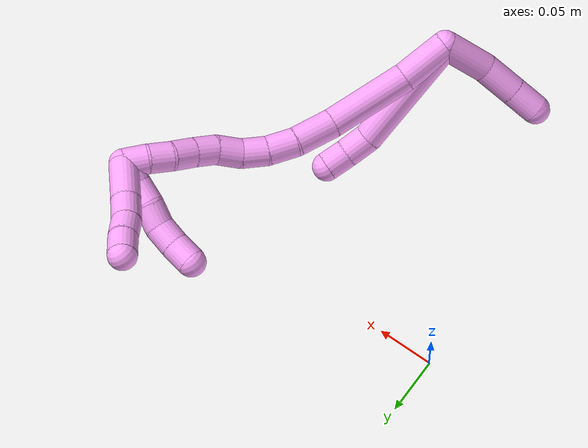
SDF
<sdf version="1.7">
 <world name="default">
  <model name="4">
   <static>0</static>
   <link name="4">
    <collision name="collision-cylinder-e_1_2_8">
     <pose>0.027486 0.04085 -0.020495 -2.0358 0.541449 -0.845293</pose>
     <geometry><cylinder><radius>0.0125</radius><length>0.106662</length></cylinder></geometry>
     <surface>
      <friction><ode><mu>1.16</mu><mu2>1.16</mu2><slip1>0</slip1><slip2>0</slip2></ode></friction>
      <contact><ode><kp>1e+06</kp><kd>1</kd><max_vel>0</max_vel><min_depth>0.001</min_depth></ode></contact>
     </surface>
    </collision>
    <visual name="visual-cylinder-e_1_2_8">
     <pose>0.027486 0.04085 -0.020495 -2.0358 0.541449 -0.845293</pose>
     <geometry><cylinder><radius>0.0125</radius><length>0.106662</length></cylinder></geometry>
     <material><ambient>1 0.65098 0.996078 1</ambient></material>
    </visual>
    <collision name="collision-cylinder-e_2_8_9">
     <pose>0.060272 0.091958 -0.041765 -1.64629 0.475798 -0.511592</pose>
     <geometry><cylinder><radius>0.0125</radius><length>0.023145</length></cylinder></geometry>
     <surface>
      <friction><ode><mu>1.16</mu><mu2>1.16</mu2><slip1>0</slip1><slip2>0</slip2></ode></friction>
      <contact><ode><kp>1e+06</kp><kd>1</kd><max_vel>0</max_vel><min_depth>0.001</min_depth></ode></contact>
     </surface>
    </collision>
    <visual name="visual-cylinder-e_2_8_9">
     <pose>0.060272 0.091958 -0.041765 -1.64629 0.475798 -0.511592</pose>
     <geometry><cylinder><radius>0.0125</radius><length>0.023145</length></cylinder></geometry>
     <material><ambient>1 0.65098 0.996078 1</ambient></material>
    </visual>
    <collision name="collision-cylinder-e_3_9_6">
     <pose>0.069321 0.111585 -0.042215 -1.53599 0.3803 -0.367585</pose>
     <geometry><cylinder><radius>0.0125</radius><length>0.020192</length></cylinder></geometry>
     <surface>
      <friction><ode><mu>1.16</mu><mu2>1.16</mu2><slip1>0</slip1><slip2>0</slip2></ode></friction>
      <contact><ode><kp>1e+06</kp><kd>1</kd><max_vel>0</max_vel><min_depth>0.001</min_depth></ode></contact>
     </surface>
    </collision>
    <visual name="visual-cylinder-e_3_9_6">
     <pose>0.069321 0.111585 -0.042215 -1.53599 0.3803 -0.367585</pose>
     <geometry><cylinder><radius>0.0125</radius><length>0.020192</length></cylinder></geometry>
     <material><ambient>1 0.65098 0.996078 1</ambient></material>
    </visual>
    <collision name="collision-cylinder-e_1_2_10">
     <pose>-0.003707 -0.007341 -0.019465 2.78095 -0.176357 -0.903084</pose>
     <geometry><cylinder><radius>0.0125</radius><length>0.042262</length></cylinder></geometry>
     <surface>
      <friction><ode><mu>1.16</mu><mu2>1.16</mu2><slip1>0</slip1><slip2>0</slip2></ode></friction>
      <contact><ode><kp>1e+06</kp><kd>1</kd><max_vel>0</max_vel><min_depth>0.001</min_depth></ode></contact>
     </surface>
    </collision>
    <visual name="visual-cylinder-e_1_2_10">
     <pose>-0.003707 -0.007341 -0.019465 2.78095 -0.176357 -0.903084</pose>
     <geometry><cylinder><radius>0.0125</radius><length>0.042262</length></cylinder></geometry>
     <material><ambient>1 0.65098 0.996078 1</ambient></material>
    </visual>
    <collision name="collision-cylinder-e_2_10_11">
     <pose>-0.012291 -0.017264 -0.053978 2.97169 -0.309154 -2.14126</pose>
     <geometry><cylinder><radius>0.0125</radius><length>0.032056</length></cylinder></geometry>
     <surface>
      <friction><ode><mu>1.16</mu><mu2>1.16</mu2><slip1>0</slip1><slip2>0</slip2></ode></friction>
      <contact><ode><kp>1e+06</kp><kd>1</kd><max_vel>0</max_vel><min_depth>0.001</min_depth></ode></contact>
     </surface>
    </collision>
    <visual name="visual-cylinder-e_2_10_11">
     <pose>-0.012291 -0.017264 -0.053978 2.97169 -0.309154 -2.14126</pose>
     <geometry><cylinder><radius>0.0125</radius><length>0.032056</length></cylinder></geometry>
     <material><ambient>1 0.65098 0.996078 1</ambient></material>
    </visual>
    <collision name="collision-cylinder-e_3_11_5">
     <pose>-0.02177 -0.02157 -0.08089 2.9972 -0.366537 -2.39752</pose>
     <geometry><cylinder><radius>0.0125</radius><length>0.025682</length></cylinder></geometry>
     <surface>
      <friction><ode><mu>1.16</mu><mu2>1.16</mu2><slip1>0</slip1><slip2>0</slip2></ode></friction>
      <contact><ode><kp>1e+06</kp><kd>1</kd><max_vel>0</max_vel><min_depth>0.001</min_depth></ode></contact>
     </surface>
    </collision>
    <visual name="visual-cylinder-e_3_11_5">
     <pose>-0.02177 -0.02157 -0.08089 2.9972 -0.366537 -2.39752</pose>
     <geometry><cylinder><radius>0.0125</radius><length>0.025682</length></cylinder></geometry>
     <material><ambient>1 0.65098 0.996078 1</ambient></material>
    </visual>
    <collision name="collision-cylinder-e_1_2_12">
     <pose>0.00926 0.01964 -0.001858 -1.66511 0.438872 -0.480762</pose>
     <geometry><cylinder><radius>0.0125</radius><length>0.043586</length></cylinder></geometry>
     <surface>
      <friction><ode><mu>1.16</mu><mu2>1.16</mu2><slip1>0</slip1><slip2>0</slip2></ode></friction>
      <contact><ode><kp>1e+06</kp><kd>1</kd><max_vel>0</max_vel><min_depth>0.001</min_depth></ode></contact>
     </surface>
    </collision>
    <visual name="visual-cylinder-e_1_2_12">
     <pose>0.00926 0.01964 -0.001858 -1.66511 0.438872 -0.480762</pose>
     <geometry><cylinder><radius>0.0125</radius><length>0.043586</length></cylinder></geometry>
     <material><ambient>1 0.65098 0.996078 1</ambient></material>
    </visual>
    <collision name="collision-cylinder-e_2_12_13">
     <pose>0.029125 0.073672 0.000371 -1.45253 0.297126 -0.26432</pose>
     <geometry><cylinder><radius>0.0125</radius><length>0.072442</length></cylinder></geometry>
     <surface>
      <friction><ode><mu>1.16</mu><mu2>1.16</mu2><slip1>0</slip1><slip2>0</slip2></ode></friction>
      <contact><ode><kp>1e+06</kp><kd>1</kd><max_vel>0</max_vel><min_depth>0.001</min_depth></ode></contact>
     </surface>
    </collision>
    <visual name="visual-cylinder-e_2_12_13">
     <pose>0.029125 0.073672 0.000371 -1.45253 0.297126 -0.26432</pose>
     <geometry><cylinder><radius>0.0125</radius><length>0.072442</length></cylinder></geometry>
     <material><ambient>1 0.65098 0.996078 1</ambient></material>
    </visual>
    <collision name="collision-cylinder-e_3_13_14">
     <pose>0.043666 0.124475 0.008702 -1.31767 0.228197 -0.176986</pose>
     <geometry><cylinder><radius>0.0125</radius><length>0.034803</length></cylinder></geometry>
     <surface>
      <friction><ode><mu>1.16</mu><mu2>1.16</mu2><slip1>0</slip1><slip2>0</slip2></ode></friction>
      <contact><ode><kp>1e+06</kp><kd>1</kd><max_vel>0</max_vel><min_depth>0.001</min_depth></ode></contact>
     </surface>
    </collision>
    <visual name="visual-cylinder-e_3_13_14">
     <pose>0.043666 0.124475 0.008702 -1.31767 0.228197 -0.176986</pose>
     <geometry><cylinder><radius>0.0125</radius><length>0.034803</length></cylinder></geometry>
     <material><ambient>1 0.65098 0.996078 1</ambient></material>
    </visual>
    <collision name="collision-cylinder-e_4_14_15">
     <pose>0.052278 0.151606 0.017215 -1.19198 0.384919 -0.262826</pose>
     <geometry><cylinder><radius>0.0125</radius><length>0.0249</length></cylinder></geometry>
     <surface>
      <friction><ode><mu>1.16</mu><mu2>1.16</mu2><slip1>0</slip1><slip2>0</slip2></ode></friction>
      <contact><ode><kp>1e+06</kp><kd>1</kd><max_vel>0</max_vel><min_depth>0.001</min_depth></ode></contact>
     </surface>
    </collision>
    <visual name="visual-cylinder-e_4_14_15">
     <pose>0.052278 0.151606 0.017215 -1.19198 0.384919 -0.262826</pose>
     <geometry><cylinder><radius>0.0125</radius><length>0.0249</length></cylinder></geometry>
     <material><ambient>1 0.65098 0.996078 1</ambient></material>
    </visual>
    <collision name="collision-cylinder-e_5_15_16">
     <pose>0.061627 0.170557 0.026997 -0.980388 0.440879 -0.238026</pose>
     <geometry><cylinder><radius>0.0125</radius><length>0.02191</length></cylinder></geometry>
     <surface>
      <friction><ode><mu>1.16</mu><mu2>1.16</mu2><slip1>0</slip1><slip2>0</slip2></ode></friction>
      <contact><ode><kp>1e+06</kp><kd>1</kd><max_vel>0</max_vel><min_depth>0.001</min_depth></ode></contact>
     </surface>
    </collision>
    <visual name="visual-cylinder-e_5_15_16">
     <pose>0.061627 0.170557 0.026997 -0.980388 0.440879 -0.238026</pose>
     <geometry><cylinder><radius>0.0125</radius><length>0.02191</length></cylinder></geometry>
     <material><ambient>1 0.65098 0.996078 1</ambient></material>
    </visual>
    <collision name="collision-cylinder-e_6_16_17">
     <pose>0.069827 0.185463 0.040613 -0.689289 0.324015 -0.117206</pose>
     <geometry><cylinder><radius>0.0125</radius><length>0.022146</length></cylinder></geometry>
     <surface>
      <friction><ode><mu>1.16</mu><mu2>1.16</mu2><slip1>0</slip1><slip2>0</slip2></ode></friction>
      <contact><ode><kp>1e+06</kp><kd>1</kd><max_vel>0</max_vel><min_depth>0.001</min_depth></ode></contact>
     </surface>
    </collision>
    <visual name="visual-cylinder-e_6_16_17">
     <pose>0.069827 0.185463 0.040613 -0.689289 0.324015 -0.117206</pose>
     <geometry><cylinder><radius>0.0125</radius><length>0.022146</length></cylinder></geometry>
     <material><ambient>1 0.65098 0.996078 1</ambient></material>
    </visual>
    <collision name="collision-cylinder-e_7_17_18">
     <pose>0.075085 0.20016 0.054588 -0.938684 0.172503 -0.087644</pose>
     <geometry><cylinder><radius>0.0125</radius><length>0.020186</length></cylinder></geometry>
     <surface>
      <friction><ode><mu>1.16</mu><mu2>1.16</mu2><slip1>0</slip1><slip2>0</slip2></ode></friction>
      <contact><ode><kp>1e+06</kp><kd>1</kd><max_vel>0</max_vel><min_depth>0.001</min_depth></ode></contact>
     </surface>
    </collision>
    <visual name="visual-cylinder-e_7_17_18">
     <pose>0.075085 0.20016 0.054588 -0.938684 0.172503 -0.087644</pose>
     <geometry><cylinder><radius>0.0125</radius><length>0.020186</length></cylinder></geometry>
     <material><ambient>1 0.65098 0.996078 1</ambient></material>
    </visual>
    <collision name="collision-cylinder-e_8_18_19">
     <pose>0.077616 0.216368 0.066168 -0.962124 0.079894 -0.041718</pose>
     <geometry><cylinder><radius>0.0125</radius><length>0.020018</length></cylinder></geometry>
     <surface>
      <friction><ode><mu>1.16</mu><mu2>1.16</mu2><slip1>0</slip1><slip2>0</slip2></ode></friction>
      <contact><ode><kp>1e+06</kp><kd>1</kd><max_vel>0</max_vel><min_depth>0.001</min_depth></ode></contact>
     </surface>
    </collision>
    <visual name="visual-cylinder-e_8_18_19">
     <pose>0.077616 0.216368 0.066168 -0.962124 0.079894 -0.041718</pose>
     <geometry><cylinder><radius>0.0125</radius><length>0.020018</length></cylinder></geometry>
     <material><ambient>1 0.65098 0.996078 1</ambient></material>
    </visual>
    <collision name="collision-cylinder-e_9_19_20">
     <pose>0.081268 0.232375 0.077413 -0.954515 0.289245 -0.150345</pose>
     <geometry><cylinder><radius>0.0125</radius><length>0.020002</length></cylinder></geometry>
     <surface>
      <friction><ode><mu>1.16</mu><mu2>1.16</mu2><slip1>0</slip1><slip2>0</slip2></ode></friction>
      <contact><ode><kp>1e+06</kp><kd>1</kd><max_vel>0</max_vel><min_depth>0.001</min_depth></ode></contact>
     </surface>
    </collision>
    <visual name="visual-cylinder-e_9_19_20">
     <pose>0.081268 0.232375 0.077413 -0.954515 0.289245 -0.150345</pose>
     <geometry><cylinder><radius>0.0125</radius><length>0.020002</length></cylinder></geometry>
     <material><ambient>1 0.65098 0.996078 1</ambient></material>
    </visual>
    <collision name="collision-cylinder-e_10_20_1">
     <pose>0.088402 0.248185 0.087188 -1.08342 0.44229 -0.268942</pose>
     <geometry><cylinder><radius>0.0125</radius><length>0.020008</length></cylinder></geometry>
     <surface>
      <friction><ode><mu>1.16</mu><mu2>1.16</mu2><slip1>0</slip1><slip2>0</slip2></ode></friction>
      <contact><ode><kp>1e+06</kp><kd>1</kd><max_vel>0</max_vel><min_depth>0.001</min_depth></ode></contact>
     </surface>
    </collision>
    <visual name="visual-cylinder-e_10_20_1">
     <pose>0.088402 0.248185 0.087188 -1.08342 0.44229 -0.268942</pose>
     <geometry><cylinder><radius>0.0125</radius><length>0.020008</length></cylinder></geometry>
     <material><ambient>1 0.65098 0.996078 1</ambient></material>
    </visual>
    <collision name="collision-cylinder-e_1_1_21">
     <pose>0.089176 0.258489 0.082348 -2.89178 -0.35837 1.92929</pose>
     <geometry><cylinder><radius>0.0125</radius><length>0.02</length></cylinder></geometry>
     <surface>
      <friction><ode><mu>1.16</mu><mu2>1.16</mu2><slip1>0</slip1><slip2>0</slip2></ode></friction>
      <contact><ode><kp>1e+06</kp><kd>1</kd><max_vel>0</max_vel><min_depth>0.001</min_depth></ode></contact>
     </surface>
    </collision>
    <visual name="visual-cylinder-e_1_1_21">
     <pose>0.089176 0.258489 0.082348 -2.89178 -0.35837 1.92929</pose>
     <geometry><cylinder><radius>0.0125</radius><length>0.02</length></cylinder></geometry>
     <material><ambient>1 0.65098 0.996078 1</ambient></material>
    </visual>
    <collision name="collision-cylinder-e_2_21_22">
     <pose>0.079782 0.263772 0.065754 -2.76571 -0.629402 2.08406</pose>
     <geometry><cylinder><radius>0.0125</radius><length>0.02</length></cylinder></geometry>
     <surface>
      <friction><ode><mu>1.16</mu><mu2>1.16</mu2><slip1>0</slip1><slip2>0</slip2></ode></friction>
      <contact><ode><kp>1e+06</kp><kd>1</kd><max_vel>0</max_vel><min_depth>0.001</min_depth></ode></contact>
     </surface>
    </collision>
    <visual name="visual-cylinder-e_2_21_22">
     <pose>0.079782 0.263772 0.065754 -2.76571 -0.629402 2.08406</pose>
     <geometry><cylinder><radius>0.0125</radius><length>0.02</length></cylinder></geometry>
     <material><ambient>1 0.65098 0.996078 1</ambient></material>
    </visual>
    <collision name="collision-cylinder-e_3_22_23">
     <pose>0.070071 0.270279 0.0497 -2.74844 -0.392438 1.56893</pose>
     <geometry><cylinder><radius>0.0125</radius><length>0.02</length></cylinder></geometry>
     <surface>
      <friction><ode><mu>1.16</mu><mu2>1.16</mu2><slip1>0</slip1><slip2>0</slip2></ode></friction>
      <contact><ode><kp>1e+06</kp><kd>1</kd><max_vel>0</max_vel><min_depth>0.001</min_depth></ode></contact>
     </surface>
    </collision>
    <visual name="visual-cylinder-e_3_22_23">
     <pose>0.070071 0.270279 0.0497 -2.74844 -0.392438 1.56893</pose>
     <geometry><cylinder><radius>0.0125</radius><length>0.02</length></cylinder></geometry>
     <material><ambient>1 0.65098 0.996078 1</ambient></material>
    </visual>
    <collision name="collision-cylinder-e_4_23_24">
     <pose>0.059727 0.2755 0.033771 -2.91804 -0.710118 2.55367</pose>
     <geometry><cylinder><radius>0.0125</radius><length>0.02</length></cylinder></geometry>
     <surface>
      <friction><ode><mu>1.16</mu><mu2>1.16</mu2><slip1>0</slip1><slip2>0</slip2></ode></friction>
      <contact><ode><kp>1e+06</kp><kd>1</kd><max_vel>0</max_vel><min_depth>0.001</min_depth></ode></contact>
     </surface>
    </collision>
    <visual name="visual-cylinder-e_4_23_24">
     <pose>0.059727 0.2755 0.033771 -2.91804 -0.710118 2.55367</pose>
     <geometry><cylinder><radius>0.0125</radius><length>0.02</length></cylinder></geometry>
     <material><ambient>1 0.65098 0.996078 1</ambient></material>
    </visual>
    <collision name="collision-cylinder-e_5_24_4">
     <pose>0.045884 0.278374 0.019673 -2.96545 -0.821802 2.7417</pose>
     <geometry><cylinder><radius>0.0125</radius><length>0.02</length></cylinder></geometry>
     <surface>
      <friction><ode><mu>1.16</mu><mu2>1.16</mu2><slip1>0</slip1><slip2>0</slip2></ode></friction>
      <contact><ode><kp>1e+06</kp><kd>1</kd><max_vel>0</max_vel><min_depth>0.001</min_depth></ode></contact>
     </surface>
    </collision>
    <visual name="visual-cylinder-e_5_24_4">
     <pose>0.045884 0.278374 0.019673 -2.96545 -0.821802 2.7417</pose>
     <geometry><cylinder><radius>0.0125</radius><length>0.02</length></cylinder></geometry>
     <material><ambient>1 0.65098 0.996078 1</ambient></material>
    </visual>
    <collision name="collision-cylinder-e_1_1_25">
     <pose>0.081471 0.268787 0.085213 -2.02825 -0.673264 1.02453</pose>
     <geometry><cylinder><radius>0.0125</radius><length>0.035964</length></cylinder></geometry>
     <surface>
      <friction><ode><mu>1.16</mu><mu2>1.16</mu2><slip1>0</slip1><slip2>0</slip2></ode></friction>
      <contact><ode><kp>1e+06</kp><kd>1</kd><max_vel>0</max_vel><min_depth>0.001</min_depth></ode></contact>
     </surface>
    </collision>
    <visual name="visual-cylinder-e_1_1_25">
     <pose>0.081471 0.268787 0.085213 -2.02825 -0.673264 1.02453</pose>
     <geometry><cylinder><radius>0.0125</radius><length>0.035964</length></cylinder></geometry>
     <material><ambient>1 0.65098 0.996078 1</ambient></material>
    </visual>
    <collision name="collision-cylinder-e_2_25_26">
     <pose>0.061901 0.289268 0.07697 -1.82374 -0.799391 0.998775</pose>
     <geometry><cylinder><radius>0.0125</radius><length>0.023315</length></cylinder></geometry>
     <surface>
      <friction><ode><mu>1.16</mu><mu2>1.16</mu2><slip1>0</slip1><slip2>0</slip2></ode></friction>
      <contact><ode><kp>1e+06</kp><kd>1</kd><max_vel>0</max_vel><min_depth>0.001</min_depth></ode></contact>
     </surface>
    </collision>
    <visual name="visual-cylinder-e_2_25_26">
     <pose>0.061901 0.289268 0.07697 -1.82374 -0.799391 0.998775</pose>
     <geometry><cylinder><radius>0.0125</radius><length>0.023315</length></cylinder></geometry>
     <material><ambient>1 0.65098 0.996078 1</ambient></material>
    </visual>
    <collision name="collision-cylinder-e_3_26_27">
     <pose>0.046789 0.304572 0.074831 -1.58489 -0.737304 0.74683</pose>
     <geometry><cylinder><radius>0.0125</radius><length>0.020092</length></cylinder></geometry>
     <surface>
      <friction><ode><mu>1.16</mu><mu2>1.16</mu2><slip1>0</slip1><slip2>0</slip2></ode></friction>
      <contact><ode><kp>1e+06</kp><kd>1</kd><max_vel>0</max_vel><min_depth>0.001</min_depth></ode></contact>
     </surface>
    </collision>
    <visual name="visual-cylinder-e_3_26_27">
     <pose>0.046789 0.304572 0.074831 -1.58489 -0.737304 0.74683</pose>
     <geometry><cylinder><radius>0.0125</radius><length>0.020092</length></cylinder></geometry>
     <material><ambient>1 0.65098 0.996078 1</ambient></material>
    </visual>
    <collision name="collision-cylinder-e_4_27_3">
     <pose>0.032643 0.319117 0.073632 -1.72347 -0.799119 0.91481</pose>
     <geometry><cylinder><radius>0.0125</radius><length>0.020629</length></cylinder></geometry>
     <surface>
      <friction><ode><mu>1.16</mu><mu2>1.16</mu2><slip1>0</slip1><slip2>0</slip2></ode></friction>
      <contact><ode><kp>1e+06</kp><kd>1</kd><max_vel>0</max_vel><min_depth>0.001</min_depth></ode></contact>
     </surface>
    </collision>
    <visual name="visual-cylinder-e_4_27_3">
     <pose>0.032643 0.319117 0.073632 -1.72347 -0.799119 0.91481</pose>
     <geometry><cylinder><radius>0.0125</radius><length>0.020629</length></cylinder></geometry>
     <material><ambient>1 0.65098 0.996078 1</ambient></material>
    </visual>
    <collision name="collision-sphere-3">
     <pose>0.02525 0.326226 0.072538 0 -0 0</pose>
     <geometry><sphere><radius>0.0125</radius></sphere></geometry>
     <surface>
      <friction><ode><mu>1.16</mu><mu2>1.16</mu2><slip1>0</slip1><slip2>0</slip2></ode></friction>
      <contact><ode><kp>1e+06</kp><kd>1</kd><max_vel>0</max_vel><min_depth>0.001</min_depth></ode></contact>
     </surface>
    </collision>
    <visual name="visual-sphere-3">
     <pose>0.02525 0.326226 0.072538 0 -0 0</pose>
     <geometry><sphere><radius>0.0125</radius></sphere></geometry>
     <material><ambient>1 0.65098 0.996078 1</ambient></material>
    </visual>
    <collision name="collision-sphere-27">
     <pose>0.040036 0.312008 0.074726 0 -0 0</pose>
     <geometry><sphere><radius>0.0125</radius></sphere></geometry>
     <surface>
      <friction><ode><mu>1.16</mu><mu2>1.16</mu2><slip1>0</slip1><slip2>0</slip2></ode></friction>
      <contact><ode><kp>1e+06</kp><kd>1</kd><max_vel>0</max_vel><min_depth>0.001</min_depth></ode></contact>
     </surface>
    </collision>
    <visual name="visual-sphere-27">
     <pose>0.040036 0.312008 0.074726 0 -0 0</pose>
     <geometry><sphere><radius>0.0125</radius></sphere></geometry>
     <material><ambient>1 0.65098 0.996078 1</ambient></material>
    </visual>
    <collision name="collision-sphere-26">
     <pose>0.053543 0.297136 0.074936 0 -0 0</pose>
     <geometry><sphere><radius>0.0125</radius></sphere></geometry>
     <surface>
      <friction><ode><mu>1.16</mu><mu2>1.16</mu2><slip1>0</slip1><slip2>0</slip2></ode></friction>
      <contact><ode><kp>1e+06</kp><kd>1</kd><max_vel>0</max_vel><min_depth>0.001</min_depth></ode></contact>
     </surface>
    </collision>
    <visual name="visual-sphere-26">
     <pose>0.053543 0.297136 0.074936 0 -0 0</pose>
     <geometry><sphere><radius>0.0125</radius></sphere></geometry>
     <material><ambient>1 0.65098 0.996078 1</ambient></material>
    </visual>
    <collision name="collision-sphere-25">
     <pose>0.070258 0.281399 0.079003 0 -0 0</pose>
     <geometry><sphere><radius>0.0125</radius></sphere></geometry>
     <surface>
      <friction><ode><mu>1.16</mu><mu2>1.16</mu2><slip1>0</slip1><slip2>0</slip2></ode></friction>
      <contact><ode><kp>1e+06</kp><kd>1</kd><max_vel>0</max_vel><min_depth>0.001</min_depth></ode></contact>
     </surface>
    </collision>
    <visual name="visual-sphere-25">
     <pose>0.070258 0.281399 0.079003 0 -0 0</pose>
     <geometry><sphere><radius>0.0125</radius></sphere></geometry>
     <material><ambient>1 0.65098 0.996078 1</ambient></material>
    </visual>
    <collision name="collision-sphere-4">
     <pose>0.038561 0.279567 0.012969 0 -0 0</pose>
     <geometry><sphere><radius>0.0125</radius></sphere></geometry>
     <surface>
      <friction><ode><mu>1.16</mu><mu2>1.16</mu2><slip1>0</slip1><slip2>0</slip2></ode></friction>
      <contact><ode><kp>1e+06</kp><kd>1</kd><max_vel>0</max_vel><min_depth>0.001</min_depth></ode></contact>
     </surface>
    </collision>
    <visual name="visual-sphere-4">
     <pose>0.038561 0.279567 0.012969 0 -0 0</pose>
     <geometry><sphere><radius>0.0125</radius></sphere></geometry>
     <material><ambient>1 0.65098 0.996078 1</ambient></material>
    </visual>
    <collision name="collision-sphere-24">
     <pose>0.053208 0.277181 0.026377 0 -0 0</pose>
     <geometry><sphere><radius>0.0125</radius></sphere></geometry>
     <surface>
      <friction><ode><mu>1.16</mu><mu2>1.16</mu2><slip1>0</slip1><slip2>0</slip2></ode></friction>
      <contact><ode><kp>1e+06</kp><kd>1</kd><max_vel>0</max_vel><min_depth>0.001</min_depth></ode></contact>
     </surface>
    </collision>
    <visual name="visual-sphere-24">
     <pose>0.053208 0.277181 0.026377 0 -0 0</pose>
     <geometry><sphere><radius>0.0125</radius></sphere></geometry>
     <material><ambient>1 0.65098 0.996078 1</ambient></material>
    </visual>
    <collision name="collision-sphere-23">
     <pose>0.066247 0.273819 0.041165 0 -0 0</pose>
     <geometry><sphere><radius>0.0125</radius></sphere></geometry>
     <surface>
      <friction><ode><mu>1.16</mu><mu2>1.16</mu2><slip1>0</slip1><slip2>0</slip2></ode></friction>
      <contact><ode><kp>1e+06</kp><kd>1</kd><max_vel>0</max_vel><min_depth>0.001</min_depth></ode></contact>
     </surface>
    </collision>
    <visual name="visual-sphere-23">
     <pose>0.066247 0.273819 0.041165 0 -0 0</pose>
     <geometry><sphere><radius>0.0125</radius></sphere></geometry>
     <material><ambient>1 0.65098 0.996078 1</ambient></material>
    </visual>
    <collision name="collision-sphere-22">
     <pose>0.073896 0.266739 0.058235 0 -0 0</pose>
     <geometry><sphere><radius>0.0125</radius></sphere></geometry>
     <surface>
      <friction><ode><mu>1.16</mu><mu2>1.16</mu2><slip1>0</slip1><slip2>0</slip2></ode></friction>
      <contact><ode><kp>1e+06</kp><kd>1</kd><max_vel>0</max_vel><min_depth>0.001</min_depth></ode></contact>
     </surface>
    </collision>
    <visual name="visual-sphere-22">
     <pose>0.073896 0.266739 0.058235 0 -0 0</pose>
     <geometry><sphere><radius>0.0125</radius></sphere></geometry>
     <material><ambient>1 0.65098 0.996078 1</ambient></material>
    </visual>
    <collision name="collision-sphere-21">
     <pose>0.085669 0.260804 0.073274 0 -0 0</pose>
     <geometry><sphere><radius>0.0125</radius></sphere></geometry>
     <surface>
      <friction><ode><mu>1.16</mu><mu2>1.16</mu2><slip1>0</slip1><slip2>0</slip2></ode></friction>
      <contact><ode><kp>1e+06</kp><kd>1</kd><max_vel>0</max_vel><min_depth>0.001</min_depth></ode></contact>
     </surface>
    </collision>
    <visual name="visual-sphere-21">
     <pose>0.085669 0.260804 0.073274 0 -0 0</pose>
     <geometry><sphere><radius>0.0125</radius></sphere></geometry>
     <material><ambient>1 0.65098 0.996078 1</ambient></material>
    </visual>
    <collision name="collision-sphere-1">
     <pose>0.092684 0.256174 0.091422 0 -0 0</pose>
     <geometry><sphere><radius>0.0125</radius></sphere></geometry>
     <surface>
      <friction><ode><mu>1.16</mu><mu2>1.16</mu2><slip1>0</slip1><slip2>0</slip2></ode></friction>
      <contact><ode><kp>1e+06</kp><kd>1</kd><max_vel>0</max_vel><min_depth>0.001</min_depth></ode></contact>
     </surface>
    </collision>
    <visual name="visual-sphere-1">
     <pose>0.092684 0.256174 0.091422 0 -0 0</pose>
     <geometry><sphere><radius>0.0125</radius></sphere></geometry>
     <material><ambient>1 0.65098 0.996078 1</ambient></material>
    </visual>
    <collision name="collision-sphere-11">
     <pose>-0.017168 -0.019845 -0.069027 0 -0 0</pose>
     <geometry><sphere><radius>0.0125</radius></sphere></geometry>
     <surface>
      <friction><ode><mu>1.16</mu><mu2>1.16</mu2><slip1>0</slip1><slip2>0</slip2></ode></friction>
      <contact><ode><kp>1e+06</kp><kd>1</kd><max_vel>0</max_vel><min_depth>0.001</min_depth></ode></contact>
     </surface>
    </collision>
    <visual name="visual-sphere-11">
     <pose>-0.017168 -0.019845 -0.069027 0 -0 0</pose>
     <geometry><sphere><radius>0.0125</radius></sphere></geometry>
     <material><ambient>1 0.65098 0.996078 1</ambient></material>
    </visual>
    <collision name="collision-sphere-10">
     <pose>-0.007415 -0.014682 -0.03893 0 -0 0</pose>
     <geometry><sphere><radius>0.0125</radius></sphere></geometry>
     <surface>
      <friction><ode><mu>1.16</mu><mu2>1.16</mu2><slip1>0</slip1><slip2>0</slip2></ode></friction>
      <contact><ode><kp>1e+06</kp><kd>1</kd><max_vel>0</max_vel><min_depth>0.001</min_depth></ode></contact>
     </surface>
    </collision>
    <visual name="visual-sphere-10">
     <pose>-0.007415 -0.014682 -0.03893 0 -0 0</pose>
     <geometry><sphere><radius>0.0125</radius></sphere></geometry>
     <material><ambient>1 0.65098 0.996078 1</ambient></material>
    </visual>
    <collision name="collision-sphere-6">
     <pose>0.073068 0.120954 -0.041889 0 -0 0</pose>
     <geometry><sphere><radius>0.0125</radius></sphere></geometry>
     <surface>
      <friction><ode><mu>1.16</mu><mu2>1.16</mu2><slip1>0</slip1><slip2>0</slip2></ode></friction>
      <contact><ode><kp>1e+06</kp><kd>1</kd><max_vel>0</max_vel><min_depth>0.001</min_depth></ode></contact>
     </surface>
    </collision>
    <visual name="visual-sphere-6">
     <pose>0.073068 0.120954 -0.041889 0 -0 0</pose>
     <geometry><sphere><radius>0.0125</radius></sphere></geometry>
     <material><ambient>1 0.65098 0.996078 1</ambient></material>
    </visual>
    <collision name="collision-sphere-9">
     <pose>0.065573 0.102216 -0.042541 0 -0 0</pose>
     <geometry><sphere><radius>0.0125</radius></sphere></geometry>
     <surface>
      <friction><ode><mu>1.16</mu><mu2>1.16</mu2><slip1>0</slip1><slip2>0</slip2></ode></friction>
      <contact><ode><kp>1e+06</kp><kd>1</kd><max_vel>0</max_vel><min_depth>0.001</min_depth></ode></contact>
     </surface>
    </collision>
    <visual name="visual-sphere-9">
     <pose>0.065573 0.102216 -0.042541 0 -0 0</pose>
     <geometry><sphere><radius>0.0125</radius></sphere></geometry>
     <material><ambient>1 0.65098 0.996078 1</ambient></material>
    </visual>
    <collision name="collision-sphere-2">
     <geometry><sphere><radius>0.0125</radius></sphere></geometry>
     <surface>
      <friction><ode><mu>1.16</mu><mu2>1.16</mu2><slip1>0</slip1><slip2>0</slip2></ode></friction>
      <contact><ode><kp>1e+06</kp><kd>1</kd><max_vel>0</max_vel><min_depth>0.001</min_depth></ode></contact>
     </surface>
    </collision>
    <visual name="visual-sphere-2">
     <geometry><sphere><radius>0.0125</radius></sphere></geometry>
     <material><ambient>1 0.65098 0.996078 1</ambient></material>
    </visual>
    <collision name="collision-sphere-19">
     <pose>0.078415 0.224553 0.071873 0 -0 0</pose>
     <geometry><sphere><radius>0.0125</radius></sphere></geometry>
     <surface>
      <friction><ode><mu>1.16</mu><mu2>1.16</mu2><slip1>0</slip1><slip2>0</slip2></ode></friction>
      <contact><ode><kp>1e+06</kp><kd>1</kd><max_vel>0</max_vel><min_depth>0.001</min_depth></ode></contact>
     </surface>
    </collision>
    <visual name="visual-sphere-19">
     <pose>0.078415 0.224553 0.071873 0 -0 0</pose>
     <geometry><sphere><radius>0.0125</radius></sphere></geometry>
     <material><ambient>1 0.65098 0.996078 1</ambient></material>
    </visual>
    <collision name="collision-sphere-8">
     <pose>0.054972 0.0817 -0.040989 0 -0 0</pose>
     <geometry><sphere><radius>0.0125</radius></sphere></geometry>
     <surface>
      <friction><ode><mu>1.16</mu><mu2>1.16</mu2><slip1>0</slip1><slip2>0</slip2></ode></friction>
      <contact><ode><kp>1e+06</kp><kd>1</kd><max_vel>0</max_vel><min_depth>0.001</min_depth></ode></contact>
     </surface>
    </collision>
    <visual name="visual-sphere-8">
     <pose>0.054972 0.0817 -0.040989 0 -0 0</pose>
     <geometry><sphere><radius>0.0125</radius></sphere></geometry>
     <material><ambient>1 0.65098 0.996078 1</ambient></material>
    </visual>
    <collision name="collision-sphere-5">
     <pose>-0.026372 -0.023295 -0.092753 0 -0 0</pose>
     <geometry><sphere><radius>0.0125</radius></sphere></geometry>
     <surface>
      <friction><ode><mu>1.16</mu><mu2>1.16</mu2><slip1>0</slip1><slip2>0</slip2></ode></friction>
      <contact><ode><kp>1e+06</kp><kd>1</kd><max_vel>0</max_vel><min_depth>0.001</min_depth></ode></contact>
     </surface>
    </collision>
    <visual name="visual-sphere-5">
     <pose>-0.026372 -0.023295 -0.092753 0 -0 0</pose>
     <geometry><sphere><radius>0.0125</radius></sphere></geometry>
     <material><ambient>1 0.65098 0.996078 1</ambient></material>
    </visual>
    <collision name="collision-sphere-12">
     <pose>0.018521 0.03928 -0.003716 0 -0 0</pose>
     <geometry><sphere><radius>0.0125</radius></sphere></geometry>
     <surface>
      <friction><ode><mu>1.16</mu><mu2>1.16</mu2><slip1>0</slip1><slip2>0</slip2></ode></friction>
      <contact><ode><kp>1e+06</kp><kd>1</kd><max_vel>0</max_vel><min_depth>0.001</min_depth></ode></contact>
     </surface>
    </collision>
    <visual name="visual-sphere-12">
     <pose>0.018521 0.03928 -0.003716 0 -0 0</pose>
     <geometry><sphere><radius>0.0125</radius></sphere></geometry>
     <material><ambient>1 0.65098 0.996078 1</ambient></material>
    </visual>
    <collision name="collision-sphere-13">
     <pose>0.03973 0.108064 0.004457 0 -0 0</pose>
     <geometry><sphere><radius>0.0125</radius></sphere></geometry>
     <surface>
      <friction><ode><mu>1.16</mu><mu2>1.16</mu2><slip1>0</slip1><slip2>0</slip2></ode></friction>
      <contact><ode><kp>1e+06</kp><kd>1</kd><max_vel>0</max_vel><min_depth>0.001</min_depth></ode></contact>
     </surface>
    </collision>
    <visual name="visual-sphere-13">
     <pose>0.03973 0.108064 0.004457 0 -0 0</pose>
     <geometry><sphere><radius>0.0125</radius></sphere></geometry>
     <material><ambient>1 0.65098 0.996078 1</ambient></material>
    </visual>
    <collision name="collision-sphere-14">
     <pose>0.047603 0.140885 0.012947 0 -0 0</pose>
     <geometry><sphere><radius>0.0125</radius></sphere></geometry>
     <surface>
      <friction><ode><mu>1.16</mu><mu2>1.16</mu2><slip1>0</slip1><slip2>0</slip2></ode></friction>
      <contact><ode><kp>1e+06</kp><kd>1</kd><max_vel>0</max_vel><min_depth>0.001</min_depth></ode></contact>
     </surface>
    </collision>
    <visual name="visual-sphere-14">
     <pose>0.047603 0.140885 0.012947 0 -0 0</pose>
     <geometry><sphere><radius>0.0125</radius></sphere></geometry>
     <material><ambient>1 0.65098 0.996078 1</ambient></material>
    </visual>
    <collision name="collision-sphere-15">
     <pose>0.056952 0.162327 0.021482 0 -0 0</pose>
     <geometry><sphere><radius>0.0125</radius></sphere></geometry>
     <surface>
      <friction><ode><mu>1.16</mu><mu2>1.16</mu2><slip1>0</slip1><slip2>0</slip2></ode></friction>
      <contact><ode><kp>1e+06</kp><kd>1</kd><max_vel>0</max_vel><min_depth>0.001</min_depth></ode></contact>
     </surface>
    </collision>
    <visual name="visual-sphere-15">
     <pose>0.056952 0.162327 0.021482 0 -0 0</pose>
     <geometry><sphere><radius>0.0125</radius></sphere></geometry>
     <material><ambient>1 0.65098 0.996078 1</ambient></material>
    </visual>
    <collision name="collision-sphere-16">
     <pose>0.066302 0.178787 0.032513 0 -0 0</pose>
     <geometry><sphere><radius>0.0125</radius></sphere></geometry>
     <surface>
      <friction><ode><mu>1.16</mu><mu2>1.16</mu2><slip1>0</slip1><slip2>0</slip2></ode></friction>
      <contact><ode><kp>1e+06</kp><kd>1</kd><max_vel>0</max_vel><min_depth>0.001</min_depth></ode></contact>
     </surface>
    </collision>
    <visual name="visual-sphere-16">
     <pose>0.066302 0.178787 0.032513 0 -0 0</pose>
     <geometry><sphere><radius>0.0125</radius></sphere></geometry>
     <material><ambient>1 0.65098 0.996078 1</ambient></material>
    </visual>
    <collision name="collision-sphere-17">
     <pose>0.073353 0.192139 0.048714 0 -0 0</pose>
     <geometry><sphere><radius>0.0125</radius></sphere></geometry>
     <surface>
      <friction><ode><mu>1.16</mu><mu2>1.16</mu2><slip1>0</slip1><slip2>0</slip2></ode></friction>
      <contact><ode><kp>1e+06</kp><kd>1</kd><max_vel>0</max_vel><min_depth>0.001</min_depth></ode></contact>
     </surface>
    </collision>
    <visual name="visual-sphere-17">
     <pose>0.073353 0.192139 0.048714 0 -0 0</pose>
     <geometry><sphere><radius>0.0125</radius></sphere></geometry>
     <material><ambient>1 0.65098 0.996078 1</ambient></material>
    </visual>
    <collision name="collision-sphere-18">
     <pose>0.076818 0.208182 0.060463 0 -0 0</pose>
     <geometry><sphere><radius>0.0125</radius></sphere></geometry>
     <surface>
      <friction><ode><mu>1.16</mu><mu2>1.16</mu2><slip1>0</slip1><slip2>0</slip2></ode></friction>
      <contact><ode><kp>1e+06</kp><kd>1</kd><max_vel>0</max_vel><min_depth>0.001</min_depth></ode></contact>
     </surface>
    </collision>
    <visual name="visual-sphere-18">
     <pose>0.076818 0.208182 0.060463 0 -0 0</pose>
     <geometry><sphere><radius>0.0125</radius></sphere></geometry>
     <material><ambient>1 0.65098 0.996078 1</ambient></material>
    </visual>
    <collision name="collision-sphere-20">
     <pose>0.08412 0.240197 0.082953 0 -0 0</pose>
     <geometry><sphere><radius>0.0125</radius></sphere></geometry>
     <surface>
      <friction><ode><mu>1.16</mu><mu2>1.16</mu2><slip1>0</slip1><slip2>0</slip2></ode></friction>
      <contact><ode><kp>1e+06</kp><kd>1</kd><max_vel>0</max_vel><min_depth>0.001</min_depth></ode></contact>
     </surface>
    </collision>
    <visual name="visual-sphere-20">
     <pose>0.08412 0.240197 0.082953 0 -0 0</pose>
     <geometry><sphere><radius>0.0125</radius></sphere></geometry>
     <material><ambient>1 0.65098 0.996078 1</ambient></material>
    </visual>
    <inertial>
     <pose>0.042922 0.137989 0.016212 0 -0 0</pose>
     <mass>0.75</mass>
     <inertia><ixx>3.7e-05</ixx><ixy>0</ixy><ixz>0</ixz><iyy>-2e-05</iyy><iyz>0</iyz><izz>-0.000214</izz></inertia>
    </inertial>
   </link>
   <pose>0.130615 -0.202738 0.11233 0.007583 0.727332 -0.069639</pose>
  </model>
 </world>
</sdf>
